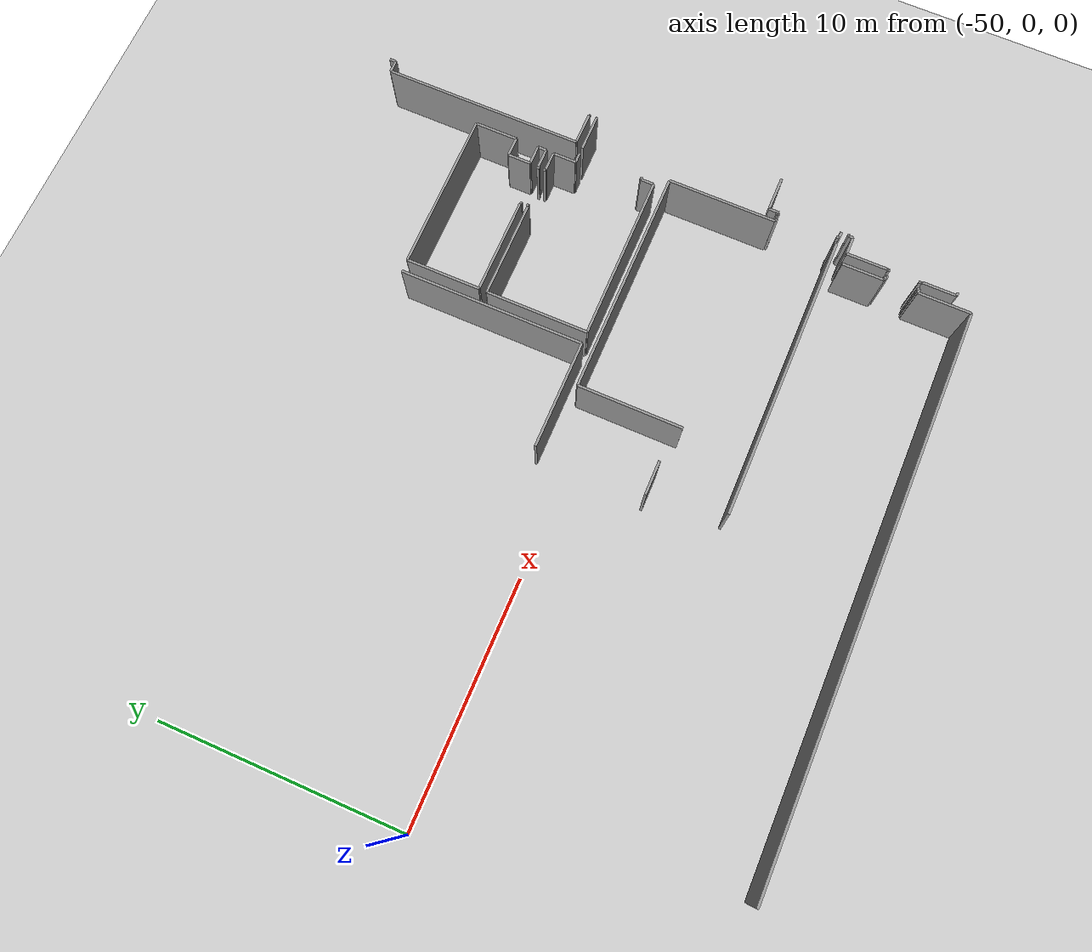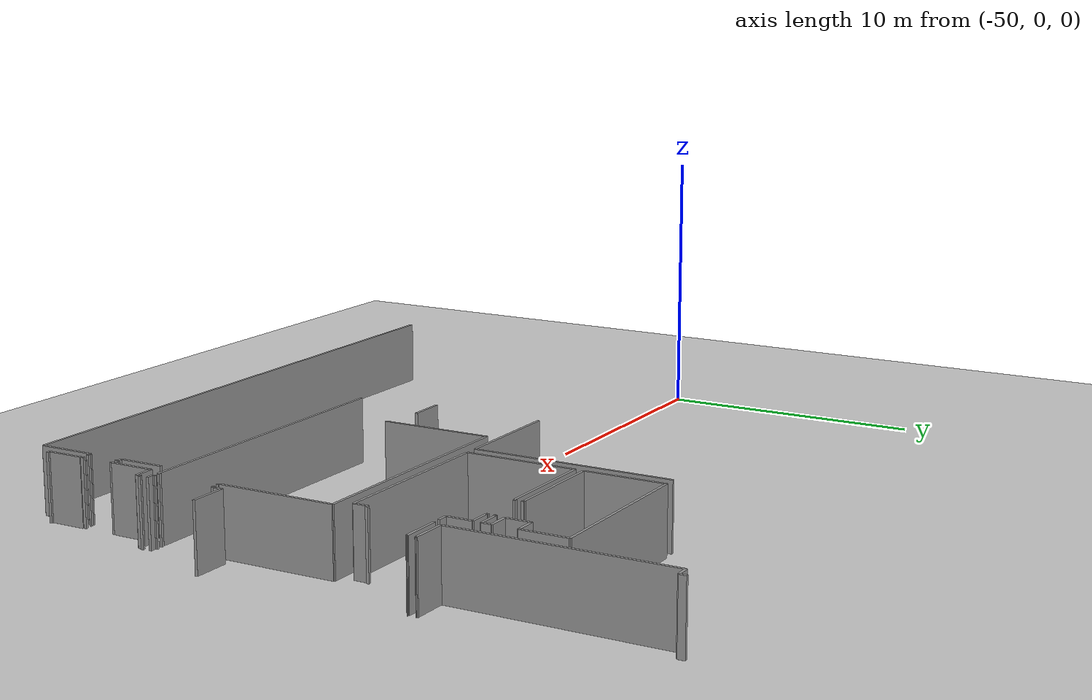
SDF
<sdf version="1.6">
 <world name="default">
  <model name="ground_plane">
   <static>1</static>
   <link name="link">
    <collision name="collision">
     <geometry><plane><normal>0 0 1</normal><size>100 100</size></plane></geometry>
     <surface><friction><ode><mu>100</mu><mu2>50</mu2></ode></friction></surface>
    </collision>
    <visual name="visual">
     <cast_shadows>0</cast_shadows>
     <geometry><plane><normal>0 0 1</normal><size>100 100</size></plane></geometry>
     <material>
      <script><uri>file://media/materials/scripts/gazebo.material</uri><name>Gazebo/Grey</name></script>
     </material>
    </visual>
   </link>
  </model>
  <model name="0510032258_A_40_1_105">
   <static>1</static>
   <link name="Wall_40">
    <collision name="Wall_40_Collision">
     <geometry><box><size>7.47852932209 0.1 2.5</size></box></geometry>
     <pose>3.73926466104 0 1.25 0 0 0</pose>
    </collision>
    <visual name="Wall_40_Visual">
     <pose>3.73926466104 0 1.25 0 0 0</pose>
     <geometry><box><size>7.47852932209 0.1 2.5</size></box></geometry>
     <material>
      <script><uri>file://media/materials/scripts/gazebo.material</uri><name>Gazebo/Grey</name></script>
      <ambient>1 1 1 1</ambient>
     </material>
    </visual>
    <pose>16.6090303893 -4.40784124403 0 0 0 -1.57079632679</pose>
   </link>
   <link name="Wall_41">
    <collision name="Wall_41_Collision">
     <geometry><box><size>4.37264965952 0.1 2.5</size></box></geometry>
     <pose>2.18632482976 0 1.25 0 0 0</pose>
    </collision>
    <visual name="Wall_41_Visual">
     <pose>2.18632482976 0 1.25 0 0 0</pose>
     <geometry><box><size>4.37264965952 0.1 2.5</size></box></geometry>
     <material>
      <script><uri>file://media/materials/scripts/gazebo.material</uri><name>Gazebo/Grey</name></script>
      <ambient>1 1 1 1</ambient>
     </material>
    </visual>
    <pose>16.6090303893 -11.8863705661 0 0 0 3.14159265359</pose>
   </link>
   <link name="Wall_52">
    <collision name="Wall_52_Collision">
     <geometry><box><size>1.38557445968 0.1 2.5</size></box></geometry>
     <pose>0.692787229842 0 1.25 0 0 0</pose>
    </collision>
    <visual name="Wall_52_Visual">
     <pose>0.692787229842 0 1.25 0 0 0</pose>
     <geometry><box><size>1.38557445968 0.1 2.5</size></box></geometry>
     <material>
      <script><uri>file://media/materials/scripts/gazebo.material</uri><name>Gazebo/Grey</name></script>
      <ambient>1 1 1 1</ambient>
     </material>
    </visual>
    <pose>13.5114086797 -16.270327269 0 0 0 -3.13664129116</pose>
   </link>
   <link name="Wall_61">
    <collision name="Wall_61_Collision">
     <geometry><box><size>4.21828946031 0.1 2.5</size></box></geometry>
     <pose>2.10914473016 0 1.25 0 0 0</pose>
    </collision>
    <visual name="Wall_61_Visual">
     <pose>2.10914473016 0 1.25 0 0 0</pose>
     <geometry><box><size>4.21828946031 0.1 2.5</size></box></geometry>
     <material>
      <script><uri>file://media/materials/scripts/gazebo.material</uri><name>Gazebo/Grey</name></script>
      <ambient>1 1 1 1</ambient>
     </material>
    </visual>
    <pose>15.0152454518 -16.6035674357 0 0 0 1.57079632679</pose>
   </link>
   <link name="Wall_62">
    <collision name="Wall_62_Collision">
     <geometry><box><size>9.21536741539 0.1 2.5</size></box></geometry>
     <pose>4.60768370769 0 1.25 0 0 0</pose>
    </collision>
    <visual name="Wall_62_Visual">
     <pose>4.60768370769 0 1.25 0 0 0</pose>
     <geometry><box><size>9.21536741539 0.1 2.5</size></box></geometry>
     <material>
      <script><uri>file://media/materials/scripts/gazebo.material</uri><name>Gazebo/Grey</name></script>
      <ambient>1 1 1 1</ambient>
     </material>
    </visual>
    <pose>15.0152454518 -12.3852779754 0 0 0 0.0</pose>
   </link>
   <link name="Wall_63">
    <collision name="Wall_63_Collision">
     <geometry><box><size>4.38967374733 0.1 2.5</size></box></geometry>
     <pose>2.19483687367 0 1.25 0 0 0</pose>
    </collision>
    <visual name="Wall_63_Visual">
     <pose>2.19483687367 0 1.25 0 0 0</pose>
     <geometry><box><size>4.38967374733 0.1 2.5</size></box></geometry>
     <material>
      <script><uri>file://media/materials/scripts/gazebo.material</uri><name>Gazebo/Grey</name></script>
      <ambient>1 1 1 1</ambient>
     </material>
    </visual>
    <pose>24.2306128672 -12.3852779754 0 0 0 -1.57079632679</pose>
   </link>
   <link name="Wall_64">
    <collision name="Wall_64_Collision">
     <geometry><box><size>0.0437036284175 0.1 2.5</size></box></geometry>
     <pose>0.0218518142088 0 1.25 0 0 0</pose>
    </collision>
    <visual name="Wall_64_Visual">
     <pose>0.0218518142088 0 1.25 0 0 0</pose>
     <geometry><box><size>0.0437036284175 0.1 2.5</size></box></geometry>
     <material>
      <script><uri>file://media/materials/scripts/gazebo.material</uri><name>Gazebo/Grey</name></script>
      <ambient>1 1 1 1</ambient>
     </material>
    </visual>
    <pose>24.2306128672 -16.7749517227 0 0 0 0.0</pose>
   </link>
   <link name="Wall_65">
    <collision name="Wall_65_Collision">
     <geometry><box><size>0.0983331639394 0.1 2.5</size></box></geometry>
     <pose>0.0491665819697 0 1.25 0 0 0</pose>
    </collision>
    <visual name="Wall_65_Visual">
     <pose>0.0491665819697 0 1.25 0 0 0</pose>
     <geometry><box><size>0.0983331639394 0.1 2.5</size></box></geometry>
     <material>
      <script><uri>file://media/materials/scripts/gazebo.material</uri><name>Gazebo/Grey</name></script>
      <ambient>1 1 1 1</ambient>
     </material>
    </visual>
    <pose>24.2743164956 -16.7749517227 0 0 0 -1.57079632679</pose>
   </link>
   <link name="Wall_66">
    <collision name="Wall_66_Collision">
     <geometry><box><size>0.0880424839923 0.1 2.5</size></box></geometry>
     <pose>0.0440212419961 0 1.25 0 0 0</pose>
    </collision>
    <visual name="Wall_66_Visual">
     <pose>0.0440212419961 0 1.25 0 0 0</pose>
     <geometry><box><size>0.0880424839923 0.1 2.5</size></box></geometry>
     <material>
      <script><uri>file://media/materials/scripts/gazebo.material</uri><name>Gazebo/Grey</name></script>
      <ambient>1 1 1 1</ambient>
     </material>
    </visual>
    <pose>24.2743164956 -19.204060372 0 0 0 -1.57079632679</pose>
   </link>
   <link name="Wall_67">
    <collision name="Wall_67_Collision">
     <geometry><box><size>11.6341888815 0.1 2.5</size></box></geometry>
     <pose>5.81709444074 0 1.25 0 0 0</pose>
    </collision>
    <visual name="Wall_67_Visual">
     <pose>5.81709444074 0 1.25 0 0 0</pose>
     <geometry><box><size>11.6341888815 0.1 2.5</size></box></geometry>
     <material>
      <script><uri>file://media/materials/scripts/gazebo.material</uri><name>Gazebo/Grey</name></script>
      <ambient>1 1 1 1</ambient>
     </material>
    </visual>
    <pose>24.2743164956 -19.292102856 0 0 0 -3.14081733297</pose>
   </link>
   <link name="Wall_68">
    <collision name="Wall_68_Collision">
     <geometry><box><size>0.304654944608 0.1 2.5</size></box></geometry>
     <pose>0.152327472304 0 1.25 0 0 0</pose>
    </collision>
    <visual name="Wall_68_Visual">
     <pose>0.152327472304 0 1.25 0 0 0</pose>
     <geometry><box><size>0.304654944608 0.1 2.5</size></box></geometry>
     <material>
      <script><uri>file://media/materials/scripts/gazebo.material</uri><name>Gazebo/Grey</name></script>
      <ambient>1 1 1 1</ambient>
     </material>
    </visual>
    <pose>24.6253430227 -16.6974540096 0 0 0 1.57079632679</pose>
   </link>
   <link name="Wall_69">
    <collision name="Wall_69_Collision">
     <geometry><box><size>1.39673747332 0.1 2.5</size></box></geometry>
     <pose>0.69836873666 0 1.25 0 0 0</pose>
    </collision>
    <visual name="Wall_69_Visual">
     <pose>0.69836873666 0 1.25 0 0 0</pose>
     <geometry><box><size>1.39673747332 0.1 2.5</size></box></geometry>
     <material>
      <script><uri>file://media/materials/scripts/gazebo.material</uri><name>Gazebo/Grey</name></script>
      <ambient>1 1 1 1</ambient>
     </material>
    </visual>
    <pose>24.6253430227 -16.3927990649 0 0 0 0.0</pose>
   </link>
   <link name="Wall_78">
    <collision name="Wall_78_Collision">
     <geometry><box><size>0.258156316699 0.1 2.5</size></box></geometry>
     <pose>0.129078158349 0 1.25 0 0 0</pose>
    </collision>
    <visual name="Wall_78_Visual">
     <pose>0.129078158349 0 1.25 0 0 0</pose>
     <geometry><box><size>0.258156316699 0.1 2.5</size></box></geometry>
     <material>
      <script><uri>file://media/materials/scripts/gazebo.material</uri><name>Gazebo/Grey</name></script>
      <ambient>1 1 1 1</ambient>
     </material>
    </visual>
    <pose>24.7960920825 -19.3039180811 0 0 0 3.14159265359</pose>
   </link>
   <link name="Wall_79">
    <collision name="Wall_79_Collision">
     <geometry><box><size>0.110275434495 0.1 2.5</size></box></geometry>
     <pose>0.0551377172477 0 1.25 0 0 0</pose>
    </collision>
    <visual name="Wall_79_Visual">
     <pose>0.0551377172477 0 1.25 0 0 0</pose>
     <geometry><box><size>0.110275434495 0.1 2.5</size></box></geometry>
     <material>
      <script><uri>file://media/materials/scripts/gazebo.material</uri><name>Gazebo/Grey</name></script>
      <ambient>1 1 1 1</ambient>
     </material>
    </visual>
    <pose>24.5379357658 -19.3039180811 0 0 0 1.57079632679</pose>
   </link>
   <link name="Wall_80">
    <collision name="Wall_80_Collision">
     <geometry><box><size>0.0640308974489 0.1 2.5</size></box></geometry>
     <pose>0.0320154487245 0 1.25 0 0 0</pose>
    </collision>
    <visual name="Wall_80_Visual">
     <pose>0.0320154487245 0 1.25 0 0 0</pose>
     <geometry><box><size>0.0640308974489 0.1 2.5</size></box></geometry>
     <material>
      <script><uri>file://media/materials/scripts/gazebo.material</uri><name>Gazebo/Grey</name></script>
      <ambient>1 1 1 1</ambient>
     </material>
    </visual>
    <pose>24.5379357658 -16.8497814819 0 0 0 1.57079632679</pose>
   </link>
   <link name="Wall_81">
    <collision name="Wall_81_Collision">
     <geometry><box><size>0.0843581664803 0.1 2.5</size></box></geometry>
     <pose>0.0421790832402 0 1.25 0 0 0</pose>
    </collision>
    <visual name="Wall_81_Visual">
     <pose>0.0421790832402 0 1.25 0 0 0</pose>
     <geometry><box><size>0.0843581664803 0.1 2.5</size></box></geometry>
     <material>
      <script><uri>file://media/materials/scripts/gazebo.material</uri><name>Gazebo/Grey</name></script>
      <ambient>1 1 1 1</ambient>
     </material>
    </visual>
    <pose>24.5379357658 -16.7857505844 0 0 0 0.0</pose>
   </link>
   <link name="Wall_82">
    <collision name="Wall_82_Collision">
     <geometry><box><size>0.088349205334 0.1 2.5</size></box></geometry>
     <pose>0.044174602667 0 1.25 0 0 0</pose>
    </collision>
    <visual name="Wall_82_Visual">
     <pose>0.044174602667 0 1.25 0 0 0</pose>
     <geometry><box><size>0.088349205334 0.1 2.5</size></box></geometry>
     <material>
      <script><uri>file://media/materials/scripts/gazebo.material</uri><name>Gazebo/Grey</name></script>
      <ambient>1 1 1 1</ambient>
     </material>
    </visual>
    <pose>24.6222939323 -16.7857505844 0 0 0 1.53627766933</pose>
   </link>
   <link name="Wall_83">
    <collision name="Wall_83_Collision">
     <geometry><box><size>0.126410204289 0.1 2.5</size></box></geometry>
     <pose>0.0632051021445 0 1.25 0 0 0</pose>
    </collision>
    <visual name="Wall_83_Visual">
     <pose>0.0632051021445 0 1.25 0 0 0</pose>
     <geometry><box><size>0.126410204289 0.1 2.5</size></box></geometry>
     <material>
      <script><uri>file://media/materials/scripts/gazebo.material</uri><name>Gazebo/Grey</name></script>
      <ambient>1 1 1 1</ambient>
     </material>
    </visual>
    <pose>24.1589592438 -24.2138428702 0 0 0 3.14159265359</pose>
   </link>
   <link name="Wall_84">
    <collision name="Wall_84_Collision">
     <geometry><box><size>1.3849222482 0.1 2.5</size></box></geometry>
     <pose>0.692461124098 0 1.25 0 0 0</pose>
    </collision>
    <visual name="Wall_84_Visual">
     <pose>0.692461124098 0 1.25 0 0 0</pose>
     <geometry><box><size>1.3849222482 0.1 2.5</size></box></geometry>
     <material>
      <script><uri>file://media/materials/scripts/gazebo.material</uri><name>Gazebo/Grey</name></script>
      <ambient>1 1 1 1</ambient>
     </material>
    </visual>
    <pose>24.0325490395 -24.2138428702 0 0 0 1.57079632679</pose>
   </link>
   <link name="Wall_85">
    <collision name="Wall_85_Collision">
     <geometry><box><size>0.0301097672528 0.1 2.5</size></box></geometry>
     <pose>0.0150548836264 0 1.25 0 0 0</pose>
    </collision>
    <visual name="Wall_85_Visual">
     <pose>0.0150548836264 0 1.25 0 0 0</pose>
     <geometry><box><size>0.0301097672528 0.1 2.5</size></box></geometry>
     <material>
      <script><uri>file://media/materials/scripts/gazebo.material</uri><name>Gazebo/Grey</name></script>
      <ambient>1 1 1 1</ambient>
     </material>
    </visual>
    <pose>24.0325490395 -22.828920622 0 0 0 3.14159265359</pose>
   </link>
   <link name="Wall_86">
    <collision name="Wall_86_Collision">
     <geometry><box><size>0.113959752007 0.1 2.5</size></box></geometry>
     <pose>0.0569798760037 0 1.25 0 0 0</pose>
    </collision>
    <visual name="Wall_86_Visual">
     <pose>0.0569798760037 0 1.25 0 0 0</pose>
     <geometry><box><size>0.113959752007 0.1 2.5</size></box></geometry>
     <material>
      <script><uri>file://media/materials/scripts/gazebo.material</uri><name>Gazebo/Grey</name></script>
      <ambient>1 1 1 1</ambient>
     </material>
    </visual>
    <pose>24.0024392723 -22.828920622 0 0 0 1.57079632679</pose>
   </link>
   <link name="Wall_87">
    <collision name="Wall_87_Collision">
     <geometry><box><size>0.0928702103872 0.1 2.5</size></box></geometry>
     <pose>0.0464351051936 0 1.25 0 0 0</pose>
    </collision>
    <visual name="Wall_87_Visual">
     <pose>0.0464351051936 0 1.25 0 0 0</pose>
     <geometry><box><size>0.0928702103872 0.1 2.5</size></box></geometry>
     <material>
      <script><uri>file://media/materials/scripts/gazebo.material</uri><name>Gazebo/Grey</name></script>
      <ambient>1 1 1 1</ambient>
     </material>
    </visual>
    <pose>24.0024392723 -21.5510976725 0 0 0 1.57079632679</pose>
   </link>
   <link name="Wall_88">
    <collision name="Wall_88_Collision">
     <geometry><box><size>0.0233763593861 0.1 2.5</size></box></geometry>
     <pose>0.0116881796931 0 1.25 0 0 0</pose>
    </collision>
    <visual name="Wall_88_Visual">
     <pose>0.0116881796931 0 1.25 0 0 0</pose>
     <geometry><box><size>0.0233763593861 0.1 2.5</size></box></geometry>
     <material>
      <script><uri>file://media/materials/scripts/gazebo.material</uri><name>Gazebo/Grey</name></script>
      <ambient>1 1 1 1</ambient>
     </material>
    </visual>
    <pose>24.0024392723 -21.4582274621 0 0 0 0.0</pose>
   </link>
   <link name="Wall_89">
    <collision name="Wall_89_Collision">
     <geometry><box><size>1.66429515195 0.1 2.5</size></box></geometry>
     <pose>0.832147575973 0 1.25 0 0 0</pose>
    </collision>
    <visual name="Wall_89_Visual">
     <pose>0.832147575973 0 1.25 0 0 0</pose>
     <geometry><box><size>1.66429515195 0.1 2.5</size></box></geometry>
     <material>
      <script><uri>file://media/materials/scripts/gazebo.material</uri><name>Gazebo/Grey</name></script>
      <ambient>1 1 1 1</ambient>
     </material>
    </visual>
    <pose>24.0258156317 -21.4582274621 0 0 0 1.57079632679</pose>
   </link>
   <link name="Wall_90">
    <collision name="Wall_90_Collision">
     <geometry><box><size>0.72822441305 0.1 2.5</size></box></geometry>
     <pose>0.364112206525 0 1.25 0 0 0</pose>
    </collision>
    <visual name="Wall_90_Visual">
     <pose>0.364112206525 0 1.25 0 0 0</pose>
     <geometry><box><size>0.72822441305 0.1 2.5</size></box></geometry>
     <material>
      <script><uri>file://media/materials/scripts/gazebo.material</uri><name>Gazebo/Grey</name></script>
      <ambient>1 1 1 1</ambient>
     </material>
    </visual>
    <pose>24.0258156317 -19.7939323102 0 0 0 0.0</pose>
   </link>
   <link name="Wall_91">
    <collision name="Wall_91_Collision">
     <geometry><box><size>0.182818375851 0.1 2.5</size></box></geometry>
     <pose>0.0914091879256 0 1.25 0 0 0</pose>
    </collision>
    <visual name="Wall_91_Visual">
     <pose>0.0914091879256 0 1.25 0 0 0</pose>
     <geometry><box><size>0.182818375851 0.1 2.5</size></box></geometry>
     <material>
      <script><uri>file://media/materials/scripts/gazebo.material</uri><name>Gazebo/Grey</name></script>
      <ambient>1 1 1 1</ambient>
     </material>
    </visual>
    <pose>24.7540400447 -19.7939323102 0 0 0 1.57079632679</pose>
   </link>
   <link name="Wall_92">
    <collision name="Wall_92_Collision">
     <geometry><box><size>0.0788952129281 0.1 2.5</size></box></geometry>
     <pose>0.0394476064641 0 1.25 0 0 0</pose>
    </collision>
    <visual name="Wall_92_Visual">
     <pose>0.0394476064641 0 1.25 0 0 0</pose>
     <geometry><box><size>0.0788952129281 0.1 2.5</size></box></geometry>
     <material>
      <script><uri>file://media/materials/scripts/gazebo.material</uri><name>Gazebo/Grey</name></script>
      <ambient>1 1 1 1</ambient>
     </material>
    </visual>
    <pose>24.7540400447 -19.6111139343 0 0 0 0.0</pose>
   </link>
   <link name="Wall_105">
    <collision name="Wall_105_Collision">
     <geometry><box><size>1.69033946539 0.1 2.5</size></box></geometry>
     <pose>0.845169732696 0 1.25 0 0 0</pose>
    </collision>
    <visual name="Wall_105_Visual">
     <pose>0.845169732696 0 1.25 0 0 0</pose>
     <geometry><box><size>1.69033946539 0.1 2.5</size></box></geometry>
     <material>
      <script><uri>file://media/materials/scripts/gazebo.material</uri><name>Gazebo/Grey</name></script>
      <ambient>1 1 1 1</ambient>
     </material>
    </visual>
    <pose>23.5576532168 -19.7788139039 0 0 0 -1.57079632679</pose>
   </link>
   <link name="Wall_106">
    <collision name="Wall_106_Collision">
     <geometry><box><size>0.159696107328 0.1 2.5</size></box></geometry>
     <pose>0.079848053664 0 1.25 0 0 0</pose>
    </collision>
    <visual name="Wall_106_Visual">
     <pose>0.079848053664 0 1.25 0 0 0</pose>
     <geometry><box><size>0.159696107328 0.1 2.5</size></box></geometry>
     <material>
      <script><uri>file://media/materials/scripts/gazebo.material</uri><name>Gazebo/Grey</name></script>
      <ambient>1 1 1 1</ambient>
     </material>
    </visual>
    <pose>23.5576532168 -21.4691533692 0 0 0 0.0</pose>
   </link>
   <link name="Wall_107">
    <collision name="Wall_107_Collision">
     <geometry><box><size>0.109259071044 0.1 2.5</size></box></geometry>
     <pose>0.0546295355219 0 1.25 0 0 0</pose>
    </collision>
    <visual name="Wall_107_Visual">
     <pose>0.0546295355219 0 1.25 0 0 0</pose>
     <geometry><box><size>0.109259071044 0.1 2.5</size></box></geometry>
     <material>
      <script><uri>file://media/materials/scripts/gazebo.material</uri><name>Gazebo/Grey</name></script>
      <ambient>1 1 1 1</ambient>
     </material>
    </visual>
    <pose>23.7173493241 -21.4691533692 0 0 0 -1.57079632679</pose>
   </link>
   <link name="Wall_108">
    <collision name="Wall_108_Collision">
     <geometry><box><size>0.0830877121659 0.1 2.5</size></box></geometry>
     <pose>0.0415438560829 0 1.25 0 0 0</pose>
    </collision>
    <visual name="Wall_108_Visual">
     <pose>0.0415438560829 0 1.25 0 0 0</pose>
     <geometry><box><size>0.0830877121659 0.1 2.5</size></box></geometry>
     <material>
      <script><uri>file://media/materials/scripts/gazebo.material</uri><name>Gazebo/Grey</name></script>
      <ambient>1 1 1 1</ambient>
     </material>
    </visual>
    <pose>23.7173493241 -22.7357963208 0 0 0 -1.57079632679</pose>
   </link>
   <link name="Wall_109">
    <collision name="Wall_109_Collision">
     <geometry><box><size>0.153852017481 0.1 2.5</size></box></geometry>
     <pose>0.0769260087407 0 1.25 0 0 0</pose>
    </collision>
    <visual name="Wall_109_Visual">
     <pose>0.0769260087407 0 1.25 0 0 0</pose>
     <geometry><box><size>0.153852017481 0.1 2.5</size></box></geometry>
     <material>
      <script><uri>file://media/materials/scripts/gazebo.material</uri><name>Gazebo/Grey</name></script>
      <ambient>1 1 1 1</ambient>
     </material>
    </visual>
    <pose>23.7173493241 -22.8188840329 0 0 0 3.14159265359</pose>
   </link>
   <link name="Wall_110">
    <collision name="Wall_110_Collision">
     <geometry><box><size>2.13093302165 0.1 2.5</size></box></geometry>
     <pose>1.06546651082 0 1.25 0 0 0</pose>
    </collision>
    <visual name="Wall_110_Visual">
     <pose>1.06546651082 0 1.25 0 0 0</pose>
     <geometry><box><size>2.13093302165 0.1 2.5</size></box></geometry>
     <material>
      <script><uri>file://media/materials/scripts/gazebo.material</uri><name>Gazebo/Grey</name></script>
      <ambient>1 1 1 1</ambient>
     </material>
    </visual>
    <pose>23.5634973066 -22.8188840329 0 0 0 -1.57079632679</pose>
   </link>
   <link name="Wall_111">
    <collision name="Wall_111_Collision">
     <geometry><box><size>23.0117390403 0.1 2.5</size></box></geometry>
     <pose>11.5058695202 0 1.25 0 0 0</pose>
    </collision>
    <visual name="Wall_111_Visual">
     <pose>11.5058695202 0 1.25 0 0 0</pose>
     <geometry><box><size>23.0117390403 0.1 2.5</size></box></geometry>
     <material>
      <script><uri>file://media/materials/scripts/gazebo.material</uri><name>Gazebo/Grey</name></script>
      <ambient>1 1 1 1</ambient>
     </material>
    </visual>
    <pose>23.5634973066 -24.9498170546 0 0 0 -3.14153192373</pose>
   </link>
   <link name="Wall_112">
    <collision name="Wall_112_Collision">
     <geometry><box><size>4.14002947454 0.1 2.5</size></box></geometry>
     <pose>2.07001473727 0 1.25 0 0 0</pose>
    </collision>
    <visual name="Wall_112_Visual">
     <pose>2.07001473727 0 1.25 0 0 0</pose>
     <geometry><box><size>4.14002947454 0.1 2.5</size></box></geometry>
     <material>
      <script><uri>file://media/materials/scripts/gazebo.material</uri><name>Gazebo/Grey</name></script>
      <ambient>1 1 1 1</ambient>
     </material>
    </visual>
    <pose>17.1010773453 -11.8927228377 0 0 0 1.57079632679</pose>
   </link>
   <link name="Wall_113">
    <collision name="Wall_113_Collision">
     <geometry><box><size>3.91185587966 0.1 2.5</size></box></geometry>
     <pose>1.95592793983 0 1.25 0 0 0</pose>
    </collision>
    <visual name="Wall_113_Visual">
     <pose>1.95592793983 0 1.25 0 0 0</pose>
     <geometry><box><size>3.91185587966 0.1 2.5</size></box></geometry>
     <material>
      <script><uri>file://media/materials/scripts/gazebo.material</uri><name>Gazebo/Grey</name></script>
      <ambient>1 1 1 1</ambient>
     </material>
    </visual>
    <pose>17.1010773453 -7.75269336315 0 0 0 0.0</pose>
   </link>
   <link name="Wall_114">
    <collision name="Wall_114_Collision">
     <geometry><box><size>0.0260443134465 0.1 2.5</size></box></geometry>
     <pose>0.0130221567232 0 1.25 0 0 0</pose>
    </collision>
    <visual name="Wall_114_Visual">
     <pose>0.0130221567232 0 1.25 0 0 0</pose>
     <geometry><box><size>0.0260443134465 0.1 2.5</size></box></geometry>
     <material>
      <script><uri>file://media/materials/scripts/gazebo.material</uri><name>Gazebo/Grey</name></script>
      <ambient>1 1 1 1</ambient>
     </material>
    </visual>
    <pose>21.0129332249 -7.75269336315 0 0 0 1.57079632679</pose>
   </link>
   <link name="Wall_115">
    <collision name="Wall_115_Collision">
     <geometry><box><size>0.102017481451 0.1 2.5</size></box></geometry>
     <pose>0.0510087407257 0 1.25 0 0 0</pose>
    </collision>
    <visual name="Wall_115_Visual">
     <pose>0.0510087407257 0 1.25 0 0 0</pose>
     <geometry><box><size>0.102017481451 0.1 2.5</size></box></geometry>
     <material>
      <script><uri>file://media/materials/scripts/gazebo.material</uri><name>Gazebo/Grey</name></script>
      <ambient>1 1 1 1</ambient>
     </material>
    </visual>
    <pose>21.0129332249 -7.7266490497 0 0 0 0.0</pose>
   </link>
   <link name="Wall_116">
    <collision name="Wall_116_Collision">
     <geometry><box><size>0.0861368025206 0.1 2.5</size></box></geometry>
     <pose>0.0430684012603 0 1.25 0 0 0</pose>
    </collision>
    <visual name="Wall_116_Visual">
     <pose>0.0430684012603 0 1.25 0 0 0</pose>
     <geometry><box><size>0.0861368025206 0.1 2.5</size></box></geometry>
     <material>
      <script><uri>file://media/materials/scripts/gazebo.material</uri><name>Gazebo/Grey</name></script>
      <ambient>1 1 1 1</ambient>
     </material>
    </visual>
    <pose>22.6708761053 -7.7266490497 0 0 0 0.0</pose>
   </link>
   <link name="Wall_117">
    <collision name="Wall_117_Collision">
     <geometry><box><size>0.0184215875597 0.1 2.5</size></box></geometry>
     <pose>0.00921079377985 0 1.25 0 0 0</pose>
    </collision>
    <visual name="Wall_117_Visual">
     <pose>0.00921079377985 0 1.25 0 0 0</pose>
     <geometry><box><size>0.0184215875597 0.1 2.5</size></box></geometry>
     <material>
      <script><uri>file://media/materials/scripts/gazebo.material</uri><name>Gazebo/Grey</name></script>
      <ambient>1 1 1 1</ambient>
     </material>
    </visual>
    <pose>22.7570129078 -7.7266490497 0 0 0 -1.57079632679</pose>
   </link>
   <link name="Wall_118">
    <collision name="Wall_118_Collision">
     <geometry><box><size>0.766338042484 0.1 2.5</size></box></geometry>
     <pose>0.383169021242 0 1.25 0 0 0</pose>
    </collision>
    <visual name="Wall_118_Visual">
     <pose>0.383169021242 0 1.25 0 0 0</pose>
     <geometry><box><size>0.766338042484 0.1 2.5</size></box></geometry>
     <material>
      <script><uri>file://media/materials/scripts/gazebo.material</uri><name>Gazebo/Grey</name></script>
      <ambient>1 1 1 1</ambient>
     </material>
    </visual>
    <pose>22.7570129078 -7.74507063726 0 0 0 0.0</pose>
   </link>
   <link name="Wall_119">
    <collision name="Wall_119_Collision">
     <geometry><box><size>0.95309482671 0.1 2.5</size></box></geometry>
     <pose>0.476547413355 0 1.25 0 0 0</pose>
    </collision>
    <visual name="Wall_119_Visual">
     <pose>0.476547413355 0 1.25 0 0 0</pose>
     <geometry><box><size>0.95309482671 0.1 2.5</size></box></geometry>
     <material>
      <script><uri>file://media/materials/scripts/gazebo.material</uri><name>Gazebo/Grey</name></script>
      <ambient>1 1 1 1</ambient>
     </material>
    </visual>
    <pose>23.5233509503 -7.74507063726 0 0 0 -1.57079632679</pose>
   </link>
   <link name="Wall_120">
    <collision name="Wall_120_Collision">
     <geometry><box><size>0.414168106515 0.1 2.5</size></box></geometry>
     <pose>0.207084053257 0 1.25 0 0 0</pose>
    </collision>
    <visual name="Wall_120_Visual">
     <pose>0.207084053257 0 1.25 0 0 0</pose>
     <geometry><box><size>0.414168106515 0.1 2.5</size></box></geometry>
     <material>
      <script><uri>file://media/materials/scripts/gazebo.material</uri><name>Gazebo/Grey</name></script>
      <ambient>1 1 1 1</ambient>
     </material>
    </visual>
    <pose>23.5233509503 -8.69816546397 0 0 0 0.0</pose>
   </link>
   <link name="Wall_121">
    <collision name="Wall_121_Collision">
     <geometry><box><size>0.102144526883 0.1 2.5</size></box></geometry>
     <pose>0.0510722634414 0 1.25 0 0 0</pose>
    </collision>
    <visual name="Wall_121_Visual">
     <pose>0.0510722634414 0 1.25 0 0 0</pose>
     <geometry><box><size>0.102144526883 0.1 2.5</size></box></geometry>
     <material>
      <script><uri>file://media/materials/scripts/gazebo.material</uri><name>Gazebo/Grey</name></script>
      <ambient>1 1 1 1</ambient>
     </material>
    </visual>
    <pose>23.9375190568 -11.3346122573 0 0 0 3.14159265359</pose>
   </link>
   <link name="Wall_122">
    <collision name="Wall_122_Collision">
     <geometry><box><size>0.544389673747 0.1 2.5</size></box></geometry>
     <pose>0.272194836874 0 1.25 0 0 0</pose>
    </collision>
    <visual name="Wall_122_Visual">
     <pose>0.272194836874 0 1.25 0 0 0</pose>
     <geometry><box><size>0.544389673747 0.1 2.5</size></box></geometry>
     <material>
      <script><uri>file://media/materials/scripts/gazebo.material</uri><name>Gazebo/Grey</name></script>
      <ambient>1 1 1 1</ambient>
     </material>
    </visual>
    <pose>23.8353745299 -11.3346122573 0 0 0 -1.57079632679</pose>
   </link>
   <link name="Wall_123">
    <collision name="Wall_123_Collision">
     <geometry><box><size>6.7343111626 0.1 2.5</size></box></geometry>
     <pose>3.3671555813 0 1.25 0 0 0</pose>
    </collision>
    <visual name="Wall_123_Visual">
     <pose>3.3671555813 0 1.25 0 0 0</pose>
     <geometry><box><size>6.7343111626 0.1 2.5</size></box></geometry>
     <material>
      <script><uri>file://media/materials/scripts/gazebo.material</uri><name>Gazebo/Grey</name></script>
      <ambient>1 1 1 1</ambient>
     </material>
    </visual>
    <pose>23.8353745299 -11.8790019311 0 0 0 -3.13955518966</pose>
   </link>
   <link name="Wall_124">
    <collision name="Wall_124_Collision">
     <geometry><box><size>3.01364467934 0.1 2.5</size></box></geometry>
     <pose>1.50682233967 0 1.25 0 0 0</pose>
    </collision>
    <visual name="Wall_124_Visual">
     <pose>1.50682233967 0 1.25 0 0 0</pose>
     <geometry><box><size>3.01364467934 0.1 2.5</size></box></geometry>
     <material>
      <script><uri>file://media/materials/scripts/gazebo.material</uri><name>Gazebo/Grey</name></script>
      <ambient>1 1 1 1</ambient>
     </material>
    </visual>
    <pose>17.1106057526 -7.42288342311 0 0 0 1.57079632679</pose>
   </link>
   <link name="Wall_125">
    <collision name="Wall_125_Collision">
     <geometry><box><size>6.42862587661 0.1 2.5</size></box></geometry>
     <pose>3.21431293831 0 1.25 0 0 0</pose>
    </collision>
    <visual name="Wall_125_Visual">
     <pose>3.21431293831 0 1.25 0 0 0</pose>
     <geometry><box><size>6.42862587661 0.1 2.5</size></box></geometry>
     <material>
      <script><uri>file://media/materials/scripts/gazebo.material</uri><name>Gazebo/Grey</name></script>
      <ambient>1 1 1 1</ambient>
     </material>
    </visual>
    <pose>17.1106057526 -4.40923874377 0 0 0 0.0</pose>
   </link>
   <link name="Wall_126">
    <collision name="Wall_126_Collision">
     <geometry><box><size>1.73201036691 0.1 2.5</size></box></geometry>
     <pose>0.866005183454 0 1.25 0 0 0</pose>
    </collision>
    <visual name="Wall_126_Visual">
     <pose>0.866005183454 0 1.25 0 0 0</pose>
     <geometry><box><size>1.73201036691 0.1 2.5</size></box></geometry>
     <material>
      <script><uri>file://media/materials/scripts/gazebo.material</uri><name>Gazebo/Grey</name></script>
      <ambient>1 1 1 1</ambient>
     </material>
    </visual>
    <pose>23.5392316292 -4.40923874377 0 0 0 -1.57079632679</pose>
   </link>
   <link name="Wall_127">
    <collision name="Wall_127_Collision">
     <geometry><box><size>0.766592133347 0.1 2.5</size></box></geometry>
     <pose>0.383296066673 0 1.25 0 0 0</pose>
    </collision>
    <visual name="Wall_127_Visual">
     <pose>0.383296066673 0 1.25 0 0 0</pose>
     <geometry><box><size>0.766592133347 0.1 2.5</size></box></geometry>
     <material>
      <script><uri>file://media/materials/scripts/gazebo.material</uri><name>Gazebo/Grey</name></script>
      <ambient>1 1 1 1</ambient>
     </material>
    </visual>
    <pose>23.5392316292 -6.14124911068 0 0 0 3.14159265359</pose>
   </link>
   <link name="Wall_128">
    <collision name="Wall_128_Collision">
     <geometry><box><size>0.934165057425 0.1 2.5</size></box></geometry>
     <pose>0.467082528712 0 1.25 0 0 0</pose>
    </collision>
    <visual name="Wall_128_Visual">
     <pose>0.467082528712 0 1.25 0 0 0</pose>
     <geometry><box><size>0.934165057425 0.1 2.5</size></box></geometry>
     <material>
      <script><uri>file://media/materials/scripts/gazebo.material</uri><name>Gazebo/Grey</name></script>
      <ambient>1 1 1 1</ambient>
     </material>
    </visual>
    <pose>22.7726394959 -6.14124911068 0 0 0 -1.57079632679</pose>
   </link>
   <link name="Wall_129">
    <collision name="Wall_129_Collision">
     <geometry><box><size>0.772436223193 0.1 2.5</size></box></geometry>
     <pose>0.386218111597 0 1.25 0 0 0</pose>
    </collision>
    <visual name="Wall_129_Visual">
     <pose>0.386218111597 0 1.25 0 0 0</pose>
     <geometry><box><size>0.772436223193 0.1 2.5</size></box></geometry>
     <material>
      <script><uri>file://media/materials/scripts/gazebo.material</uri><name>Gazebo/Grey</name></script>
      <ambient>1 1 1 1</ambient>
     </material>
    </visual>
    <pose>22.7726394959 -7.07541416811 0 0 0 0.0</pose>
   </link>
   <link name="Wall_130">
    <collision name="Wall_130_Collision">
     <geometry><box><size>0.351661754243 0.1 2.5</size></box></geometry>
     <pose>0.175830877122 0 1.25 0 0 0</pose>
    </collision>
    <visual name="Wall_130_Visual">
     <pose>0.175830877122 0 1.25 0 0 0</pose>
     <geometry><box><size>0.351661754243 0.1 2.5</size></box></geometry>
     <material>
      <script><uri>file://media/materials/scripts/gazebo.material</uri><name>Gazebo/Grey</name></script>
      <ambient>1 1 1 1</ambient>
     </material>
    </visual>
    <pose>23.5450757191 -7.07541416811 0 0 0 -1.57079632679</pose>
   </link>
   <link name="Wall_131">
    <collision name="Wall_131_Collision">
     <geometry><box><size>0.794415082834 0.1 2.5</size></box></geometry>
     <pose>0.397207541417 0 1.25 0 0 0</pose>
    </collision>
    <visual name="Wall_131_Visual">
     <pose>0.397207541417 0 1.25 0 0 0</pose>
     <geometry><box><size>0.794415082834 0.1 2.5</size></box></geometry>
     <material>
      <script><uri>file://media/materials/scripts/gazebo.material</uri><name>Gazebo/Grey</name></script>
      <ambient>1 1 1 1</ambient>
     </material>
    </visual>
    <pose>23.5450757191 -7.42707592235 0 0 0 3.14159265359</pose>
   </link>
   <link name="Wall_132">
    <collision name="Wall_132_Collision">
     <geometry><box><size>0.0278229494867 0.1 2.5</size></box></geometry>
     <pose>0.0139114747434 0 1.25 0 0 0</pose>
    </collision>
    <visual name="Wall_132_Visual">
     <pose>0.0139114747434 0 1.25 0 0 0</pose>
     <geometry><box><size>0.0278229494867 0.1 2.5</size></box></geometry>
     <material>
      <script><uri>file://media/materials/scripts/gazebo.material</uri><name>Gazebo/Grey</name></script>
      <ambient>1 1 1 1</ambient>
     </material>
    </visual>
    <pose>22.7506606362 -7.42707592235 0 0 0 -1.57079632679</pose>
   </link>
   <link name="Wall_133">
    <collision name="Wall_133_Collision">
     <geometry><box><size>0.0902022563269 0.1 2.5</size></box></geometry>
     <pose>0.0451011281634 0 1.25 0 0 0</pose>
    </collision>
    <visual name="Wall_133_Visual">
     <pose>0.0451011281634 0 1.25 0 0 0</pose>
     <geometry><box><size>0.0902022563269 0.1 2.5</size></box></geometry>
     <material>
      <script><uri>file://media/materials/scripts/gazebo.material</uri><name>Gazebo/Grey</name></script>
      <ambient>1 1 1 1</ambient>
     </material>
    </visual>
    <pose>22.7506606362 -7.45489887184 0 0 0 3.14159265359</pose>
   </link>
   <link name="Wall_134">
    <collision name="Wall_134_Collision">
     <geometry><box><size>0.0847393027747 0.1 2.5</size></box></geometry>
     <pose>0.0423696513873 0 1.25 0 0 0</pose>
    </collision>
    <visual name="Wall_134_Visual">
     <pose>0.0423696513873 0 1.25 0 0 0</pose>
     <geometry><box><size>0.0847393027747 0.1 2.5</size></box></geometry>
     <material>
      <script><uri>file://media/materials/scripts/gazebo.material</uri><name>Gazebo/Grey</name></script>
      <ambient>1 1 1 1</ambient>
     </material>
    </visual>
    <pose>21.0830623031 -7.45489887184 0 0 0 3.14159265359</pose>
   </link>
   <link name="Wall_135">
    <collision name="Wall_135_Collision">
     <geometry><box><size>0.0309990852729 0.1 2.5</size></box></geometry>
     <pose>0.0154995426364 0 1.25 0 0 0</pose>
    </collision>
    <visual name="Wall_135_Visual">
     <pose>0.0154995426364 0 1.25 0 0 0</pose>
     <geometry><box><size>0.0309990852729 0.1 2.5</size></box></geometry>
     <material>
      <script><uri>file://media/materials/scripts/gazebo.material</uri><name>Gazebo/Grey</name></script>
      <ambient>1 1 1 1</ambient>
     </material>
    </visual>
    <pose>20.9983230003 -7.45489887184 0 0 0 1.57079632679</pose>
   </link>
   <link name="Wall_136">
    <collision name="Wall_136_Collision">
     <geometry><box><size>3.88771738054 0.1 2.5</size></box></geometry>
     <pose>1.94385869027 0 1.25 0 0 0</pose>
    </collision>
    <visual name="Wall_136_Visual">
     <pose>1.94385869027 0 1.25 0 0 0</pose>
     <geometry><box><size>3.88771738054 0.1 2.5</size></box></geometry>
     <material>
      <script><uri>file://media/materials/scripts/gazebo.material</uri><name>Gazebo/Grey</name></script>
      <ambient>1 1 1 1</ambient>
     </material>
    </visual>
    <pose>20.9983230003 -7.42389978656 0 0 0 3.14133122423</pose>
   </link>
   <link name="Wall_278">
    <collision name="Wall_278_Collision">
     <geometry><box><size>8.10346579937 0.1 2.5</size></box></geometry>
     <pose>4.05173289968 0 1.25 0 0 0</pose>
    </collision>
    <visual name="Wall_278_Visual">
     <pose>4.05173289968 0 1.25 0 0 0</pose>
     <geometry><box><size>8.10346579937 0.1 2.5</size></box></geometry>
     <material>
      <script><uri>file://media/materials/scripts/gazebo.material</uri><name>Gazebo/Grey</name></script>
      <ambient>1 1 1 1</ambient>
     </material>
    </visual>
    <pose>24.3455889826 -8.37343734119 0 0 0 1.57079632679</pose>
   </link>
   <link name="Wall_279">
    <collision name="Wall_279_Collision">
     <geometry><box><size>0.474895822746 0.1 2.5</size></box></geometry>
     <pose>0.237447911373 0 1.25 0 0 0</pose>
    </collision>
    <visual name="Wall_279_Visual">
     <pose>0.237447911373 0 1.25 0 0 0</pose>
     <geometry><box><size>0.474895822746 0.1 2.5</size></box></geometry>
     <material>
      <script><uri>file://media/materials/scripts/gazebo.material</uri><name>Gazebo/Grey</name></script>
      <ambient>1 1 1 1</ambient>
     </material>
    </visual>
    <pose>24.3455889826 -0.269971541823 0 0 0 0.0</pose>
   </link>
   <link name="Wall_280">
    <collision name="Wall_280_Collision">
     <geometry><box><size>0.257521089542 0.1 2.5</size></box></geometry>
     <pose>0.128760544771 0 1.25 0 0 0</pose>
    </collision>
    <visual name="Wall_280_Visual">
     <pose>0.128760544771 0 1.25 0 0 0</pose>
     <geometry><box><size>0.257521089542 0.1 2.5</size></box></geometry>
     <material>
      <script><uri>file://media/materials/scripts/gazebo.material</uri><name>Gazebo/Grey</name></script>
      <ambient>1 1 1 1</ambient>
     </material>
    </visual>
    <pose>24.8204848054 -0.269971541823 0 0 0 1.57079632679</pose>
   </link>
   <link name="Wall_291">
    <collision name="Wall_291_Collision">
     <geometry><box><size>0.0188027238541 0.1 2.5</size></box></geometry>
     <pose>0.00940136192703 0 1.25 0 0 0</pose>
    </collision>
    <visual name="Wall_291_Visual">
     <pose>0.00940136192703 0 1.25 0 0 0</pose>
     <geometry><box><size>0.0188027238541 0.1 2.5</size></box></geometry>
     <material>
      <script><uri>file://media/materials/scripts/gazebo.material</uri><name>Gazebo/Grey</name></script>
      <ambient>1 1 1 1</ambient>
     </material>
    </visual>
    <pose>25.6653369245 -8.40278483586 0 0 0 1.57079632679</pose>
   </link>
   <link name="Wall_292">
    <collision name="Wall_292_Collision">
     <geometry><box><size>1.31979006749 0.1 2.5</size></box></geometry>
     <pose>0.659895033745 0 1.25 0 0 0</pose>
    </collision>
    <visual name="Wall_292_Visual">
     <pose>0.659895033745 0 1.25 0 0 0</pose>
     <geometry><box><size>1.31979006749 0.1 2.5</size></box></geometry>
     <material>
      <script><uri>file://media/materials/scripts/gazebo.material</uri><name>Gazebo/Grey</name></script>
      <ambient>1 1 1 1</ambient>
     </material>
    </visual>
    <pose>25.6653369245 -8.383982112 0 0 0 3.13360283516</pose>
   </link>
   <link name="Wall_358">
    <collision name="Wall_358_Collision">
     <geometry><box><size>1.48909950198 0.1 2.5</size></box></geometry>
     <pose>0.744549750991 0 1.25 0 0 0</pose>
    </collision>
    <visual name="Wall_358_Visual">
     <pose>0.744549750991 0 1.25 0 0 0</pose>
     <geometry><box><size>1.48909950198 0.1 2.5</size></box></geometry>
     <material>
      <script><uri>file://media/materials/scripts/gazebo.material</uri><name>Gazebo/Grey</name></script>
      <ambient>1 1 1 1</ambient>
     </material>
    </visual>
    <pose>24.1838601484 -8.69816546397 0 0 0 0.0</pose>
   </link>
   <link name="Wall_359">
    <collision name="Wall_359_Collision">
     <geometry><box><size>0.0265524951723 0.1 2.5</size></box></geometry>
     <pose>0.0132762475861 0 1.25 0 0 0</pose>
    </collision>
    <visual name="Wall_359_Visual">
     <pose>0.0132762475861 0 1.25 0 0 0</pose>
     <geometry><box><size>0.0265524951723 0.1 2.5</size></box></geometry>
     <material>
      <script><uri>file://media/materials/scripts/gazebo.material</uri><name>Gazebo/Grey</name></script>
      <ambient>1 1 1 1</ambient>
     </material>
    </visual>
    <pose>25.6729596504 -8.69816546397 0 0 0 1.57079632679</pose>
   </link>
   <pose>-47.9 13.1512145543 0 0 0 0</pose>
  </model>
 </world>
</sdf>
